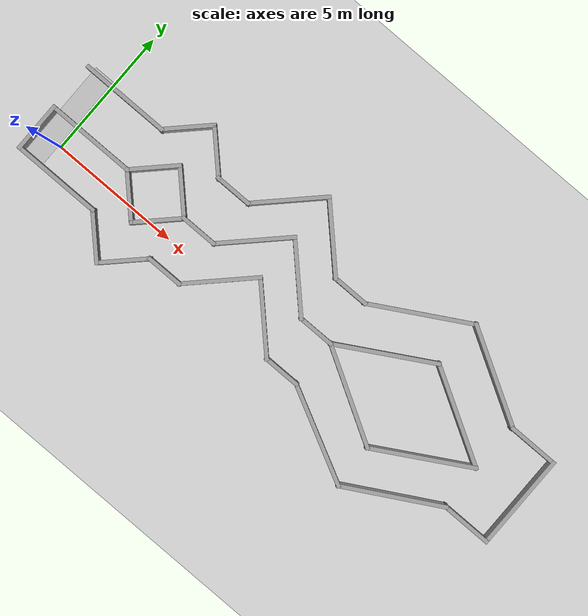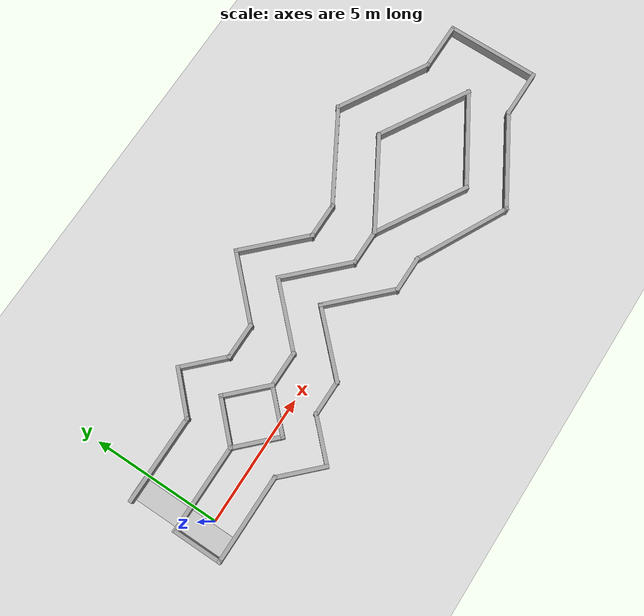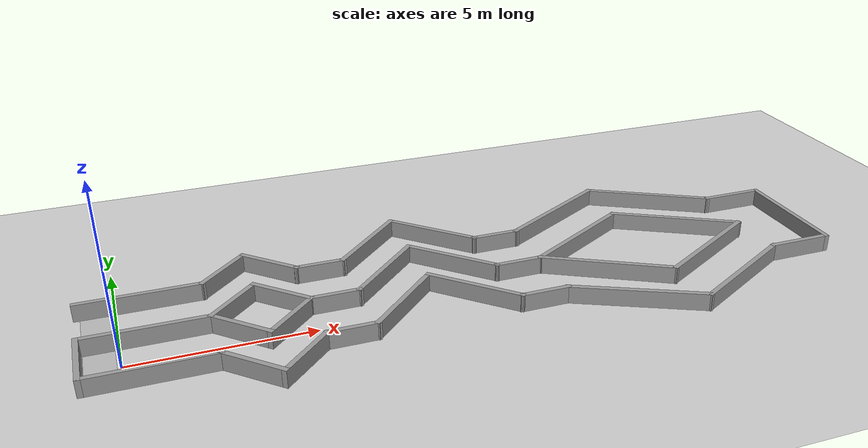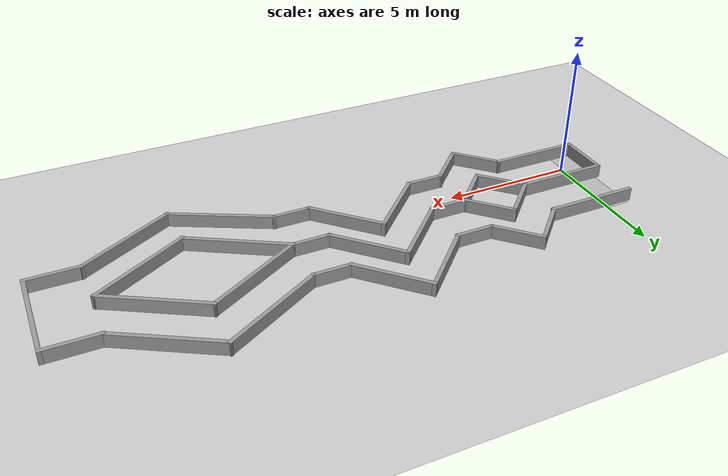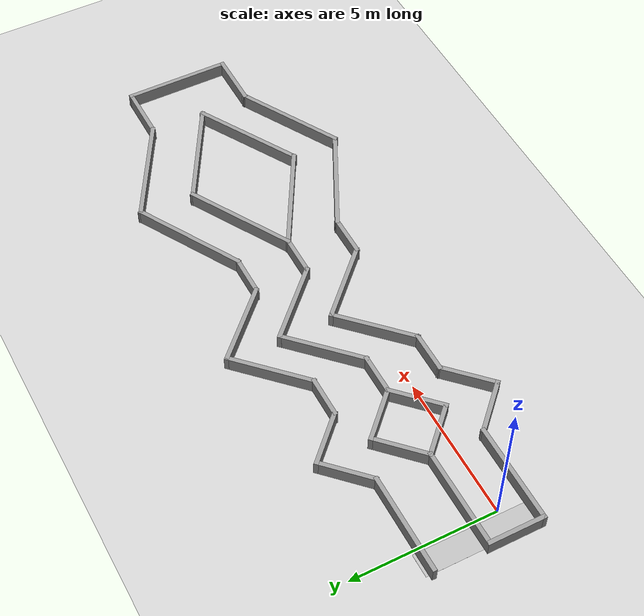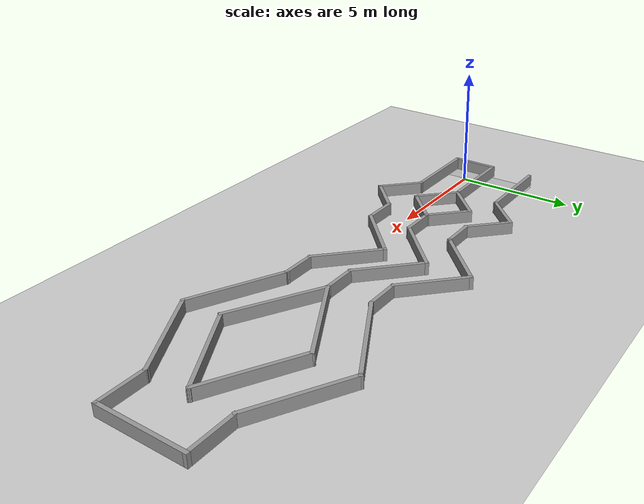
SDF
<sdf version="1.6">
 <world name="default">
  <light name="sun" type="directional">
   <pose>0 0 10 0 -0 0</pose>
   <diffuse>0.8 0.8 0.8 1</diffuse>
   <specular>0.1 0.1 0.1 1</specular>
   <attenuation>
    <range>1000</range>
    <constant>0.9</constant>
    <linear>0.01</linear>
    <quadratic>0.001</quadratic>
   </attenuation>
   <direction>-0.5 0.5 -1</direction>
  </light>
  <model name="ground_plane">
   <static>1</static>
   <link name="link">
    <collision name="collision">
     <geometry><plane><normal>0 0 1</normal><size>100 100</size></plane></geometry>
     <surface><friction><ode><mu>100</mu><mu2>50</mu2></ode></friction></surface>
    </collision>
    <visual name="visual">
     <cast_shadows>0</cast_shadows>
     <geometry><plane><normal>0 0 1</normal><size>100 100</size></plane></geometry>
     <material>
      <script><uri>file://media/materials/scripts/gazebo.material</uri><name>Gazebo/Grey</name></script>
     </material>
    </visual>
   </link>
  </model>
  <gravity>0 0 -9.8</gravity>
  <magnetic_field>6e-06 2.3e-05 -4.2e-05</magnetic_field>
  <atmosphere type="adiabatic"/>
  <physics name="default_physics" default="0" type="ode">
   <max_step_size>0.001</max_step_size>
   <real_time_factor>1</real_time_factor>
   <real_time_update_rate>1000</real_time_update_rate>
  </physics>
  <scene><ambient>0.4 0.4 0.4 1</ambient><background>0.7 0.7 0.7 1</background><shadows>1</shadows></scene>
  <spherical_coordinates>
   <surface_model>EARTH_WGS84</surface_model>
   <latitude_deg>0</latitude_deg>
   <longitude_deg>0</longitude_deg>
   <elevation>0</elevation>
   <heading_deg>0</heading_deg>
  </spherical_coordinates>
  <model name="final">
   <pose>9.66612 1.06567 0 0 -0 0</pose>
   <link name="Wall_51">
    <collision name="Wall_51_Collision">
     <geometry><box><size>2 0.15 0.5</size></box></geometry>
     <pose>0 0 0.25 0 -0 0</pose>
    </collision>
    <visual name="Wall_51_Visual">
     <pose>0 0 0.25 0 -0 0</pose>
     <geometry><box><size>2 0.15 0.5</size></box></geometry>
     <material>
      <script><uri>file://media/materials/scripts/gazebo.material</uri><name>Gazebo/Grey</name></script>
      <ambient>1 1 1 1</ambient>
     </material>
     <meta><layer>0</layer></meta>
    </visual>
    <pose>-10.6545 -1.06503 0 0 -0 1.5708</pose>
   </link>
   <link name="Wall_52">
    <collision name="Wall_52_Collision">
     <geometry><box><size>3.5 0.15 0.5</size></box></geometry>
     <pose>0 0 0.25 0 -0 0</pose>
    </collision>
    <visual name="Wall_52_Visual">
     <pose>0 0 0.25 0 -0 0</pose>
     <geometry><box><size>3.5 0.15 0.5</size></box></geometry>
     <material>
      <script><uri>file://media/materials/scripts/gazebo.material</uri><name>Gazebo/Grey</name></script>
      <ambient>1 1 1 1</ambient>
     </material>
     <meta><layer>0</layer></meta>
    </visual>
    <pose>-8.9795 -0.140025 0 0 -0 0</pose>
   </link>
   <link name="Wall_53">
    <collision name="Wall_53_Collision">
     <geometry><box><size>2 0.15 0.5</size></box></geometry>
     <pose>0 0 0.25 0 -0 0</pose>
    </collision>
    <visual name="Wall_53_Visual">
     <pose>0 0 0.25 0 -0 0</pose>
     <geometry><box><size>2 0.15 0.5</size></box></geometry>
     <material>
      <script><uri>file://media/materials/scripts/gazebo.material</uri><name>Gazebo/Grey</name></script>
      <ambient>1 1 1 1</ambient>
     </material>
     <meta><layer>0</layer></meta>
    </visual>
    <pose>-6.65 0.513975 0 0 -0 0.785016</pose>
   </link>
   <link name="Wall_54">
    <collision name="Wall_54_Collision">
     <geometry><box><size>2 0.15 0.5</size></box></geometry>
     <pose>0 0 0.25 0 -0 0</pose>
    </collision>
    <visual name="Wall_54_Visual">
     <pose>0 0 0.25 0 -0 0</pose>
     <geometry><box><size>2 0.15 0.5</size></box></geometry>
     <material>
      <script><uri>file://media/materials/scripts/gazebo.material</uri><name>Gazebo/Grey</name></script>
      <ambient>1 1 1 1</ambient>
     </material>
     <meta><layer>0</layer></meta>
    </visual>
    <pose>-5.3415 0.513975 0 0 0 -0.785398</pose>
   </link>
   <link name="Wall_55">
    <collision name="Wall_55_Collision">
     <geometry><box><size>2 0.15 0.5</size></box></geometry>
     <pose>0 0 0.25 0 -0 0</pose>
    </collision>
    <visual name="Wall_55_Visual">
     <pose>0 0 0.25 0 -0 0</pose>
     <geometry><box><size>2 0.15 0.5</size></box></geometry>
     <material>
      <script><uri>file://media/materials/scripts/gazebo.material</uri><name>Gazebo/Grey</name></script>
      <ambient>1 1 1 1</ambient>
     </material>
     <meta><layer>0</layer></meta>
    </visual>
    <pose>-5.3415 -0.794025 0 0 0 -2.35619</pose>
   </link>
   <link name="Wall_56">
    <collision name="Wall_56_Collision">
     <geometry><box><size>2 0.15 0.5</size></box></geometry>
     <pose>0 0 0.25 0 -0 0</pose>
    </collision>
    <visual name="Wall_56_Visual">
     <pose>0 0 0.25 0 -0 0</pose>
     <geometry><box><size>2 0.15 0.5</size></box></geometry>
     <material>
      <script><uri>file://media/materials/scripts/gazebo.material</uri><name>Gazebo/Grey</name></script>
      <ambient>1 1 1 1</ambient>
     </material>
     <meta><layer>0</layer></meta>
    </visual>
    <pose>-6.65 -0.794025 0 0 -0 2.35658</pose>
   </link>
   <link name="Wall_58">
    <collision name="Wall_58_Collision">
     <geometry><box><size>1.5 0.15 0.5</size></box></geometry>
     <pose>0 0 0.25 0 -0 0</pose>
    </collision>
    <visual name="Wall_58_Visual">
     <pose>0 0 0.25 0 -0 0</pose>
     <geometry><box><size>1.5 0.15 0.5</size></box></geometry>
     <material>
      <script><uri>file://media/materials/scripts/gazebo.material</uri><name>Gazebo/Grey</name></script>
      <ambient>1 1 1 1</ambient>
     </material>
     <meta><layer>0</layer></meta>
    </visual>
    <pose>-4.0125 -0.140025 0 0 -0 0</pose>
   </link>
   <link name="Wall_59">
    <collision name="Wall_59_Collision">
     <geometry><box><size>3 0.15 0.5</size></box></geometry>
     <pose>0 0 0.25 0 -0 0</pose>
    </collision>
    <visual name="Wall_59_Visual">
     <pose>0 0 0.25 0 -0 0</pose>
     <geometry><box><size>3 0.15 0.5</size></box></geometry>
     <material>
      <script><uri>file://media/materials/scripts/gazebo.material</uri><name>Gazebo/Grey</name></script>
      <ambient>1 1 1 1</ambient>
     </material>
     <meta><layer>0</layer></meta>
    </visual>
    <pose>-2.33 0.867475 0 0 -0 0.785398</pose>
   </link>
   <link name="Wall_60">
    <collision name="Wall_60_Collision">
     <geometry><box><size>3 0.15 0.5</size></box></geometry>
     <pose>0 0 0.25 0 -0 0</pose>
    </collision>
    <visual name="Wall_60_Visual">
     <pose>0 0 0.25 0 -0 0</pose>
     <geometry><box><size>3 0.15 0.5</size></box></geometry>
     <material>
      <script><uri>file://media/materials/scripts/gazebo.material</uri><name>Gazebo/Grey</name></script>
      <ambient>1 1 1 1</ambient>
     </material>
     <meta><layer>0</layer></meta>
    </visual>
    <pose>-0.315 0.867475 0 0 0 -0.785398</pose>
   </link>
   <link name="Wall_61">
    <collision name="Wall_61_Collision">
     <geometry><box><size>1.5 0.15 0.5</size></box></geometry>
     <pose>0 0 0.25 0 -0 0</pose>
    </collision>
    <visual name="Wall_61_Visual">
     <pose>0 0 0.25 0 -0 0</pose>
     <geometry><box><size>1.5 0.15 0.5</size></box></geometry>
     <material>
      <script><uri>file://media/materials/scripts/gazebo.material</uri><name>Gazebo/Grey</name></script>
      <ambient>1 1 1 1</ambient>
     </material>
     <meta><layer>0</layer></meta>
    </visual>
    <pose>1.3675 -0.140025 0 0 -0 0</pose>
   </link>
   <link name="Wall_65">
    <collision name="Wall_65_Collision">
     <geometry><box><size>4 0.15 0.5</size></box></geometry>
     <pose>0 0 0.25 0 -0 0</pose>
    </collision>
    <visual name="Wall_65_Visual">
     <pose>0 0 0.25 0 -0 0</pose>
     <geometry><box><size>4 0.15 0.5</size></box></geometry>
     <material>
      <script><uri>file://media/materials/scripts/gazebo.material</uri><name>Gazebo/Grey</name></script>
      <ambient>1 1 1 1</ambient>
     </material>
     <meta><layer>0</layer></meta>
    </visual>
    <pose>3.7095 -1.10252 0 0 0 -0.523624</pose>
   </link>
   <link name="Wall_66">
    <collision name="Wall_66_Collision">
     <geometry><box><size>4 0.15 0.5</size></box></geometry>
     <pose>0 0 0.25 0 -0 0</pose>
    </collision>
    <visual name="Wall_66_Visual">
     <pose>0 0 0.25 0 -0 0</pose>
     <geometry><box><size>4 0.15 0.5</size></box></geometry>
     <material>
      <script><uri>file://media/materials/scripts/gazebo.material</uri><name>Gazebo/Grey</name></script>
      <ambient>1 1 1 1</ambient>
     </material>
     <meta><layer>0</layer></meta>
    </visual>
    <pose>7.044 -1.10252 0 0 -0 0.523495</pose>
   </link>
   <link name="Wall_68">
    <collision name="Wall_68_Collision">
     <geometry><box><size>3.5 0.15 0.5</size></box></geometry>
     <pose>0 0 0.25 0 -0 0</pose>
    </collision>
    <visual name="Wall_68_Visual">
     <pose>0 0 0.25 0 -0 0</pose>
     <geometry><box><size>3.5 0.15 0.5</size></box></geometry>
     <material>
      <script><uri>file://media/materials/scripts/gazebo.material</uri><name>Gazebo/Grey</name></script>
      <ambient>1 1 1 1</ambient>
     </material>
     <meta><layer>0</layer></meta>
    </visual>
    <pose>-8.9795 -1.99002 0 0 -0 0</pose>
   </link>
   <link name="Wall_69">
    <collision name="Wall_69_Collision">
     <geometry><box><size>2 0.15 0.5</size></box></geometry>
     <pose>0 0 0.25 0 -0 0</pose>
    </collision>
    <visual name="Wall_69_Visual">
     <pose>0 0 0.25 0 -0 0</pose>
     <geometry><box><size>2 0.15 0.5</size></box></geometry>
     <material>
      <script><uri>file://media/materials/scripts/gazebo.material</uri><name>Gazebo/Grey</name></script>
      <ambient>1 1 1 1</ambient>
     </material>
     <meta><layer>0</layer></meta>
    </visual>
    <pose>-6.65 -2.64403 0 0 0 -0.785016</pose>
   </link>
   <link name="Wall_70">
    <collision name="Wall_70_Collision">
     <geometry><box><size>2 0.15 0.5</size></box></geometry>
     <pose>0 0 0.25 0 -0 0</pose>
    </collision>
    <visual name="Wall_70_Visual">
     <pose>0 0 0.25 0 -0 0</pose>
     <geometry><box><size>2 0.15 0.5</size></box></geometry>
     <material>
      <script><uri>file://media/materials/scripts/gazebo.material</uri><name>Gazebo/Grey</name></script>
      <ambient>1 1 1 1</ambient>
     </material>
     <meta><layer>0</layer></meta>
    </visual>
    <pose>-5.3415 -2.64403 0 0 -0 0.785398</pose>
   </link>
   <link name="Wall_71">
    <collision name="Wall_71_Collision">
     <geometry><box><size>1.5 0.15 0.5</size></box></geometry>
     <pose>0 0 0.25 0 -0 0</pose>
    </collision>
    <visual name="Wall_71_Visual">
     <pose>0 0 0.25 0 -0 0</pose>
     <geometry><box><size>1.5 0.15 0.5</size></box></geometry>
     <material>
      <script><uri>file://media/materials/scripts/gazebo.material</uri><name>Gazebo/Grey</name></script>
      <ambient>1 1 1 1</ambient>
     </material>
     <meta><layer>0</layer></meta>
    </visual>
    <pose>-4.0125 -1.99002 0 0 -0 0</pose>
   </link>
   <link name="Wall_72">
    <collision name="Wall_72_Collision">
     <geometry><box><size>3 0.15 0.5</size></box></geometry>
     <pose>0 0 0.25 0 -0 0</pose>
    </collision>
    <visual name="Wall_72_Visual">
     <pose>0 0 0.25 0 -0 0</pose>
     <geometry><box><size>3 0.15 0.5</size></box></geometry>
     <material>
      <script><uri>file://media/materials/scripts/gazebo.material</uri><name>Gazebo/Grey</name></script>
      <ambient>1 1 1 1</ambient>
     </material>
     <meta><layer>0</layer></meta>
    </visual>
    <pose>-2.33 -0.982525 0 0 -0 0.785398</pose>
   </link>
   <link name="Wall_73">
    <collision name="Wall_73_Collision">
     <geometry><box><size>3 0.15 0.5</size></box></geometry>
     <pose>0 0 0.25 0 -0 0</pose>
    </collision>
    <visual name="Wall_73_Visual">
     <pose>0 0 0.25 0 -0 0</pose>
     <geometry><box><size>3 0.15 0.5</size></box></geometry>
     <material>
      <script><uri>file://media/materials/scripts/gazebo.material</uri><name>Gazebo/Grey</name></script>
      <ambient>1 1 1 1</ambient>
     </material>
     <meta><layer>0</layer></meta>
    </visual>
    <pose>-0.315 -0.982525 0 0 0 -0.785398</pose>
   </link>
   <link name="Wall_74">
    <collision name="Wall_74_Collision">
     <geometry><box><size>1.5 0.15 0.5</size></box></geometry>
     <pose>0 0 0.25 0 -0 0</pose>
    </collision>
    <visual name="Wall_74_Visual">
     <pose>0 0 0.25 0 -0 0</pose>
     <geometry><box><size>1.5 0.15 0.5</size></box></geometry>
     <material>
      <script><uri>file://media/materials/scripts/gazebo.material</uri><name>Gazebo/Grey</name></script>
      <ambient>1 1 1 1</ambient>
     </material>
     <meta><layer>0</layer></meta>
    </visual>
    <pose>1.3675 -1.99002 0 0 -0 0</pose>
   </link>
   <link name="Wall_75">
    <collision name="Wall_75_Collision">
     <geometry><box><size>3.99315 0.15 0.5</size></box></geometry>
     <pose>0 0 0.25 0 -0 0</pose>
    </collision>
    <visual name="Wall_75_Visual">
     <pose>0 0 0.25 0 -0 0</pose>
     <geometry><box><size>3.99315 0.15 0.5</size></box></geometry>
     <material>
      <script><uri>file://media/materials/scripts/gazebo.material</uri><name>Gazebo/Grey</name></script>
      <ambient>1 1 1 1</ambient>
     </material>
     <meta><layer>0</layer></meta>
    </visual>
    <pose>3.756 -2.85953 0 0 0 -0.469583</pose>
   </link>
   <link name="Wall_76">
    <collision name="Wall_76_Collision">
     <geometry><box><size>3.97738 0.15 0.5</size></box></geometry>
     <pose>0 0 0.25 0 -0 0</pose>
    </collision>
    <visual name="Wall_76_Visual">
     <pose>0 0 0.25 0 -0 0</pose>
     <geometry><box><size>3.97738 0.15 0.5</size></box></geometry>
     <material>
      <script><uri>file://media/materials/scripts/gazebo.material</uri><name>Gazebo/Grey</name></script>
      <ambient>1 1 1 1</ambient>
     </material>
     <meta><layer>0</layer></meta>
    </visual>
    <pose>7.137 -2.79002 0 0 -0 0.512859</pose>
   </link>
   <link name="Wall_79">
    <collision name="Wall_79_Collision">
     <geometry><box><size>3.5 0.15 0.5</size></box></geometry>
     <pose>0 0 0.25 0 -0 0</pose>
    </collision>
    <visual name="Wall_79_Visual">
     <pose>0 0 0.25 0 -0 0</pose>
     <geometry><box><size>3.5 0.15 0.5</size></box></geometry>
     <material>
      <script><uri>file://media/materials/scripts/gazebo.material</uri><name>Gazebo/Grey</name></script>
      <ambient>1 1 1 1</ambient>
     </material>
     <meta><layer>0</layer></meta>
    </visual>
    <pose>-8.9795 1.70998 0 0 -0 0</pose>
   </link>
   <link name="Wall_81">
    <collision name="Wall_81_Collision">
     <geometry><box><size>2 0.15 0.5</size></box></geometry>
     <pose>0 0 0.25 0 -0 0</pose>
    </collision>
    <visual name="Wall_81_Visual">
     <pose>0 0 0.25 0 -0 0</pose>
     <geometry><box><size>2 0.15 0.5</size></box></geometry>
     <material>
      <script><uri>file://media/materials/scripts/gazebo.material</uri><name>Gazebo/Grey</name></script>
      <ambient>1 1 1 1</ambient>
     </material>
     <meta><layer>0</layer></meta>
    </visual>
    <pose>-6.65 2.36397 0 0 -0 0.785016</pose>
   </link>
   <link name="Wall_82">
    <collision name="Wall_82_Collision">
     <geometry><box><size>2 0.15 0.5</size></box></geometry>
     <pose>0 0 0.25 0 -0 0</pose>
    </collision>
    <visual name="Wall_82_Visual">
     <pose>0 0 0.25 0 -0 0</pose>
     <geometry><box><size>2 0.15 0.5</size></box></geometry>
     <material>
      <script><uri>file://media/materials/scripts/gazebo.material</uri><name>Gazebo/Grey</name></script>
      <ambient>1 1 1 1</ambient>
     </material>
     <meta><layer>0</layer></meta>
    </visual>
    <pose>-5.3415 2.36397 0 0 0 -0.785398</pose>
   </link>
   <link name="Wall_83">
    <collision name="Wall_83_Collision">
     <geometry><box><size>1.5 0.15 0.5</size></box></geometry>
     <pose>0 0 0.25 0 -0 0</pose>
    </collision>
    <visual name="Wall_83_Visual">
     <pose>0 0 0.25 0 -0 0</pose>
     <geometry><box><size>1.5 0.15 0.5</size></box></geometry>
     <material>
      <script><uri>file://media/materials/scripts/gazebo.material</uri><name>Gazebo/Grey</name></script>
      <ambient>1 1 1 1</ambient>
     </material>
     <meta><layer>0</layer></meta>
    </visual>
    <pose>-4.0125 1.70998 0 0 -0 0</pose>
   </link>
   <link name="Wall_84">
    <collision name="Wall_84_Collision">
     <geometry><box><size>3 0.15 0.5</size></box></geometry>
     <pose>0 0 0.25 0 -0 0</pose>
    </collision>
    <visual name="Wall_84_Visual">
     <pose>0 0 0.25 0 -0 0</pose>
     <geometry><box><size>3 0.15 0.5</size></box></geometry>
     <material>
      <script><uri>file://media/materials/scripts/gazebo.material</uri><name>Gazebo/Grey</name></script>
      <ambient>1 1 1 1</ambient>
     </material>
     <meta><layer>0</layer></meta>
    </visual>
    <pose>-2.33 2.71747 0 0 -0 0.785398</pose>
   </link>
   <link name="Wall_85">
    <collision name="Wall_85_Collision">
     <geometry><box><size>3 0.15 0.5</size></box></geometry>
     <pose>0 0 0.25 0 -0 0</pose>
    </collision>
    <visual name="Wall_85_Visual">
     <pose>0 0 0.25 0 -0 0</pose>
     <geometry><box><size>3 0.15 0.5</size></box></geometry>
     <material>
      <script><uri>file://media/materials/scripts/gazebo.material</uri><name>Gazebo/Grey</name></script>
      <ambient>1 1 1 1</ambient>
     </material>
     <meta><layer>0</layer></meta>
    </visual>
    <pose>-0.315 2.71747 0 0 0 -0.785398</pose>
   </link>
   <link name="Wall_86">
    <collision name="Wall_86_Collision">
     <geometry><box><size>1.5 0.15 0.5</size></box></geometry>
     <pose>0 0 0.25 0 -0 0</pose>
    </collision>
    <visual name="Wall_86_Visual">
     <pose>0 0 0.25 0 -0 0</pose>
     <geometry><box><size>1.5 0.15 0.5</size></box></geometry>
     <material>
      <script><uri>file://media/materials/scripts/gazebo.material</uri><name>Gazebo/Grey</name></script>
      <ambient>1 1 1 1</ambient>
     </material>
     <meta><layer>0</layer></meta>
    </visual>
    <pose>1.3675 1.70998 0 0 -0 0</pose>
   </link>
   <link name="Wall_91">
    <collision name="Wall_91_Collision">
     <geometry><box><size>2 0.15 0.5</size></box></geometry>
     <pose>0 0 0.25 0 -0 0</pose>
    </collision>
    <visual name="Wall_91_Visual">
     <pose>0 0 0.25 0 -0 0</pose>
     <geometry><box><size>2 0.15 0.5</size></box></geometry>
     <material>
      <script><uri>file://media/materials/scripts/gazebo.material</uri><name>Gazebo/Grey</name></script>
      <ambient>1 1 1 1</ambient>
     </material>
     <meta><layer>0</layer></meta>
    </visual>
    <pose>9.7295 -1.85102 0 0 -0 0</pose>
   </link>
   <link name="Wall_92">
    <collision name="Wall_92_Collision">
     <geometry><box><size>3.75 0.15 0.5</size></box></geometry>
     <pose>0 0 0.25 0 -0 0</pose>
    </collision>
    <visual name="Wall_92_Visual">
     <pose>0 0 0.25 0 -0 0</pose>
     <geometry><box><size>3.75 0.15 0.5</size></box></geometry>
     <material>
      <script><uri>file://media/materials/scripts/gazebo.material</uri><name>Gazebo/Grey</name></script>
      <ambient>1 1 1 1</ambient>
     </material>
     <meta><layer>0</layer></meta>
    </visual>
    <pose>10.6545 -0.051025 0 0 -0 1.5708</pose>
   </link>
   <link name="Wall_93">
    <collision name="Wall_93_Collision">
     <geometry><box><size>2 0.15 0.5</size></box></geometry>
     <pose>0 0 0.25 0 -0 0</pose>
    </collision>
    <visual name="Wall_93_Visual">
     <pose>0 0 0.25 0 -0 0</pose>
     <geometry><box><size>2 0.15 0.5</size></box></geometry>
     <material>
      <script><uri>file://media/materials/scripts/gazebo.material</uri><name>Gazebo/Grey</name></script>
      <ambient>1 1 1 1</ambient>
     </material>
     <meta><layer>0</layer></meta>
    </visual>
    <pose>9.7295 1.74897 0 0 -0 3.14159</pose>
   </link>
   <link name="Wall_94">
    <collision name="Wall_94_Collision">
     <geometry><box><size>4 0.15 0.5</size></box></geometry>
     <pose>0 0 0.25 0 -0 0</pose>
    </collision>
    <visual name="Wall_94_Visual">
     <pose>0 0 0.25 0 -0 0</pose>
     <geometry><box><size>4 0.15 0.5</size></box></geometry>
     <material>
      <script><uri>file://media/materials/scripts/gazebo.material</uri><name>Gazebo/Grey</name></script>
      <ambient>1 1 1 1</ambient>
     </material>
     <meta><layer>0</layer></meta>
    </visual>
    <pose>7.137 2.71148 0 0 -0 2.6181</pose>
   </link>
   <link name="Wall_95">
    <collision name="Wall_95_Collision">
     <geometry><box><size>4.10039 0.15 0.5</size></box></geometry>
     <pose>0 0 0.25 0 -0 0</pose>
    </collision>
    <visual name="Wall_95_Visual">
     <pose>0 0 0.25 0 -0 0</pose>
     <geometry><box><size>4.10039 0.15 0.5</size></box></geometry>
     <material>
      <script><uri>file://media/materials/scripts/gazebo.material</uri><name>Gazebo/Grey</name></script>
      <ambient>1 1 1 1</ambient>
     </material>
     <meta><layer>0</layer></meta>
    </visual>
    <pose>3.756 2.69197 0 0 0 -2.62119</pose>
   </link>
   <link name="Wall_97">
    <collision name="Wall_97_Collision">
     <geometry><box><size>4 0.15 0.5</size></box></geometry>
     <pose>0 0 0.25 0 -0 0</pose>
    </collision>
    <visual name="Wall_97_Visual">
     <pose>0 0 0.25 0 -0 0</pose>
     <geometry><box><size>4 0.15 0.5</size></box></geometry>
     <material>
      <script><uri>file://media/materials/scripts/gazebo.material</uri><name>Gazebo/Grey</name></script>
      <ambient>1 1 1 1</ambient>
     </material>
     <meta><layer>0</layer></meta>
    </visual>
    <pose>3.7095 0.822475 0 0 -0 0.523624</pose>
   </link>
   <link name="Wall_98">
    <collision name="Wall_98_Collision">
     <geometry><box><size>4 0.15 0.5</size></box></geometry>
     <pose>0 0 0.25 0 -0 0</pose>
    </collision>
    <visual name="Wall_98_Visual">
     <pose>0 0 0.25 0 -0 0</pose>
     <geometry><box><size>4 0.15 0.5</size></box></geometry>
     <material>
      <script><uri>file://media/materials/scripts/gazebo.material</uri><name>Gazebo/Grey</name></script>
      <ambient>1 1 1 1</ambient>
     </material>
     <meta><layer>0</layer></meta>
    </visual>
    <pose>7.044 0.822475 0 0 0 -0.523495</pose>
   </link>
   <static>1</static>
  </model>
  <model name="smartcar_plane">
   <static>1</static>
   <link name="link">
    <collision name="collision">
     <geometry><box><size>0.8 3.9 0.001</size></box></geometry>
     <surface><friction><ode><mu>100</mu><mu2>50</mu2></ode></friction></surface>
    </collision>
    <visual name="visual">
     <geometry><box><size>0.8 3.9 0.001</size></box></geometry>
     <material>
      <script>
       <uri>model://smartcar_plane/materials/scripts</uri>
       <uri>model://smartcar_plane/materials/textures/</uri>
       <name>SmartcarPlane/Image</name>
      </script>
     </material>
    </visual>
   </link>
   <pose>-0.5 1 0 0 -0 0</pose>
  </model>
 </world>
</sdf>
